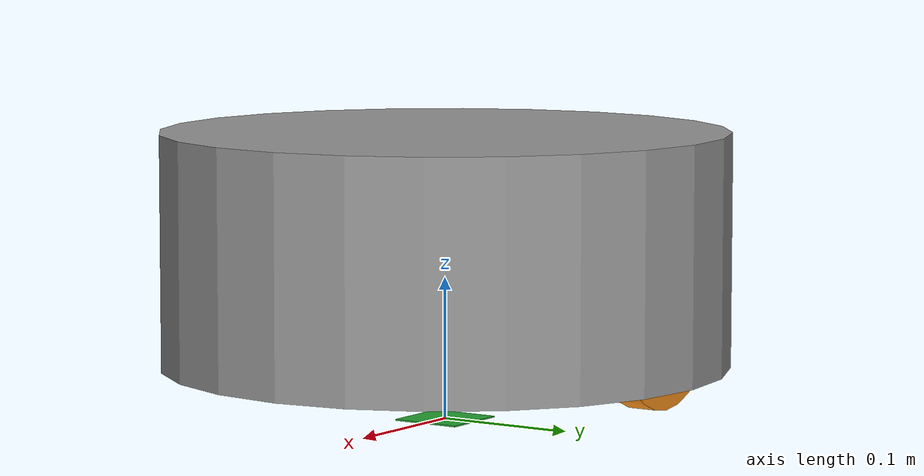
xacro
<?xml version="1.0"?>

<robot name="base" xmlns:xacro="http://ros.org/wiki/xacro">

  <!-- Define a number of dimensions using properties -->
  <xacro:property name="base_length" value="0.165" />
  <xacro:property name="base_radius" value="0.20" />
  <xacro:property name="wheel_length" value="0.02" />
  <xacro:property name="wheel_radius" value="0.060" />
  <xacro:property name="wheel_offset_x" value="0" />
  <xacro:property name="wheel_offset_y" value="0.17" />
  <xacro:property name="wheel_offset_z" value="-0.038" />

  <xacro:property name="PI" value="3.1415926" />

  <!-- define a wheel -->
  <xacro:macro name="wheel" params="suffix parent reflect color">
    <joint name="${parent}_${suffix}_wheel_joint" type="continuous">
      <axis xyz="0 0 1" />
      <limit effort="100" velocity="100"/>
      <safety_controller k_velocity="10" />
      <origin xyz="${wheel_offset_x} ${reflect*wheel_offset_y} ${wheel_offset_z}" rpy="${reflect*PI/2} 0 0" />
      <parent link="${parent}_link"/>
      <child link="${parent}_${suffix}_wheel_link"/>
    </joint>
    <link name="${parent}_${suffix}_wheel_link">
      <visual>
        <origin xyz="0 0 0" rpy="0 0 0" />
        <geometry>
          <cylinder radius="${wheel_radius}" length="${wheel_length}"/>
        </geometry>
        <material name="${color}" />
      </visual>
    </link>
  </xacro:macro>

  <!-- The base xacro macro -->
  <xacro:macro name="base" params="name color">
    <link name="${name}_link">

        <visual>
            <origin xyz="0 0 0" rpy="0 0 0"/>
            <geometry>
                <cylinder length="${base_length}" radius="${base_radius}"/>
            </geometry>
            <material name="${color}"/>
        </visual>
        <collision>
            <origin xyz="0 0 0" rpy="0 0 0"/>
            <geometry>
                <cylinder length="${base_length}" radius="${base_radius}"/>
            </geometry>
        </collision>
    </link>
  </xacro:macro>
  <!-- Add the base -->
  <xacro:base name="base" color="Grey"/>

  <link name="base_footprint">
      <visual>
        <origin xyz="0 0 0" rpy="0 0 0" />
        <geometry>
          <box size="0.05 0.05 0.001" />
        </geometry>
        <material name="TransparentGreen" />
      </visual>
  </link>

  <joint name="base_joint" type="fixed">
    <origin xyz="0 0 ${base_length/2 - wheel_offset_z}" rpy="0 0 0" />
    <parent link="base_footprint"/>
    <child link="base_link" />
  </joint>

   <!-- Add the drive wheels -->
   <wheel parent="base" suffix="l" reflect="1" color="Orange"/>
   <wheel parent="base" suffix="r" reflect="-1" color="Orange"/>

</robot>
